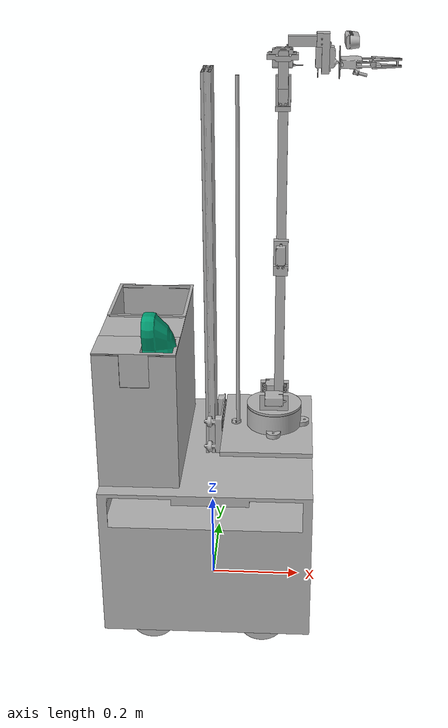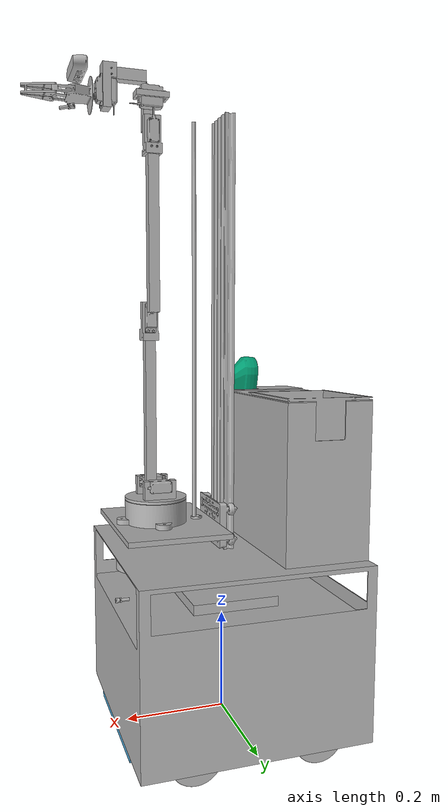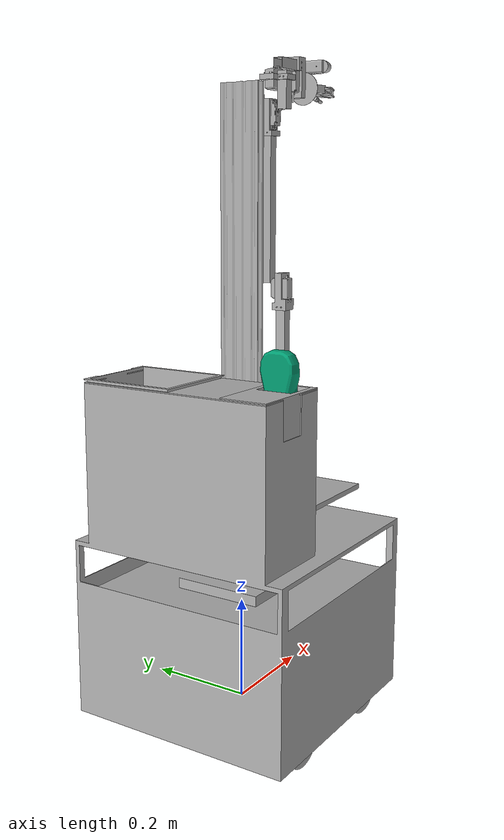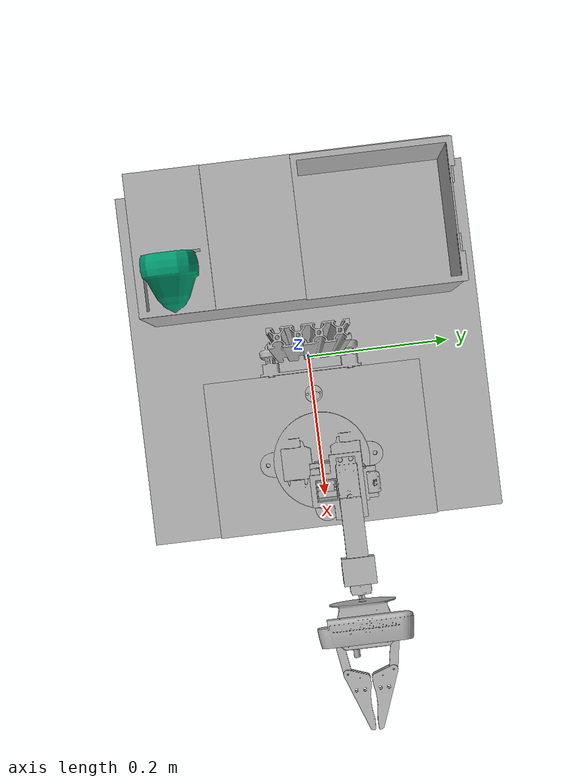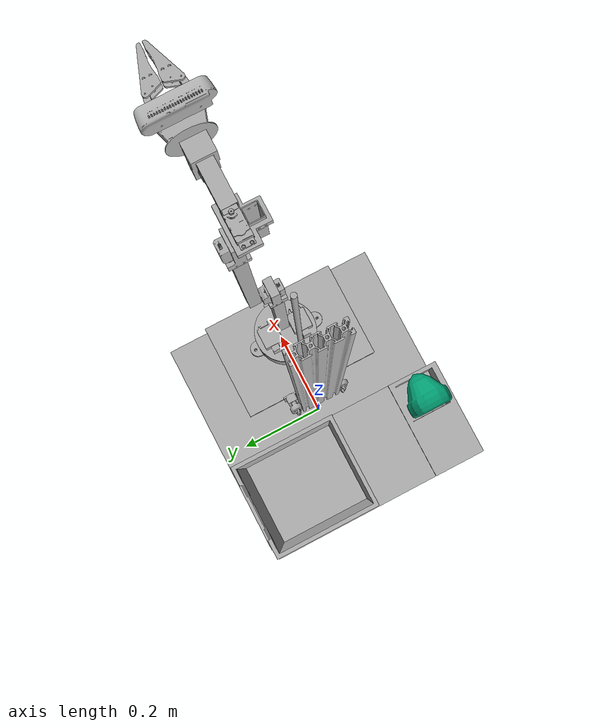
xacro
<?xml version="1.0" ?>
<robot name="apbot" xmlns:xacro="http://www.ros.org/wiki/xacro">

<xacro:include filename="$(find apbot_description)/urdf/materials.xacro" />
<xacro:include filename="$(find apbot_description)/urdf/apbot.trans" />
<xacro:include filename="$(find apbot_description)/urdf/apbot.gazebo" />

<!-- Arm -->
<xacro:include filename="$(find arm_description)/urdf/arm.xacro" />

<!-- Arm's joint to base -->
<joint name="apbot_joint" type="prismatic">
  <parent link="base_link" />
  <child link = "arm_base_link" />
  <origin xyz="0 -0.005 .69" rpy="0.0 0.0 0" />
  <axis xyz="0 0 1" />
  <limit effort="30" velocity="1.0" lower="0" upper=".7" />
</joint>

<!-- root link, on the ground just below the model origin -->
<link name="base_footprint">
  <visual>
    <origin xyz="0 0 0" rpy="0 0 0" />
    <geometry>
      <box size="0.001 0.001 0.001" />
    </geometry>
  </visual>
</link>

<!-- Joint for planar move -->
<joint name="base_link_joint" type="fixed">
  <origin xyz="0.0 0 0" rpy="0 0 ${pi/2}" />
  <parent link="base_footprint"/>
  <child link="base_link" />
</joint>

<link name="base_link">
  <inertial>
    <origin rpy="0 0 0" xyz="-1.184204407494283e-05 0.015197941868442526 0.1837926291684447"/>
    <mass value="1000"/>
    <inertia ixx=".366" ixy="-0.000165" ixz="7.3e-05" iyy=".4" iyz="-0.042" izz=".353"/>
  </inertial>
  <visual>
    <origin rpy="0 0 0" xyz="0 0 0"/>
    <geometry>
      <mesh filename="package://apbot_description/meshes/base_link.stl" scale="0.001 0.001 0.001"/>
    </geometry>
    <material name="silver"/>
  </visual>
  <collision>
    <origin rpy="0 0 0" xyz="0 0 0"/>
    <geometry>
      <mesh filename="package://apbot_description/meshes/base_link.stl" scale="0.001 0.001 0.001"/>
    </geometry>
  </collision>
</link>

<link name="lb_wheel_1">
  <inertial>
    <origin rpy="0 0 0" xyz="-0.024999999999999967 -1.3877787807814457e-17 3.469446951953614e-18"/>
    <mass value=".5"/>
    <inertia ixx="0.003843" ixy="0.0" ixz="0.0" iyy="0.002561" iyz="0.0" izz="0.002561"/>
  </inertial>
  <visual>
    <origin rpy="0 0 0" xyz="-0.211 -0.12 -0.02"/>
    <geometry>
      <mesh filename="package://apbot_description/meshes/lb_wheel_1.stl" scale="0.001 0.001 0.001"/>
    </geometry>
    <material name="silver"/>
  </visual>
  <collision>
    <origin rpy="0 ${pi/2} 0" xyz="-0.015 0 0"/>
    <geometry>
      <cylinder radius=".05" length=".035" />
    </geometry>
  </collision>
</link>

<link name="lf_wheel_1">
  <inertial>
    <origin rpy="0 0 0" xyz="-0.025000000000000022 1.3877787807814457e-17 3.469446951953614e-18"/>
    <mass value=".5"/>
    <inertia ixx="0.003843" ixy="0.0" ixz="-0.0" iyy="0.002561" iyz="0.0" izz="0.002561"/>
  </inertial>
  <visual>
    <origin rpy="0 0 0" xyz="-0.211 0.12 -0.02"/>
    <geometry>
      <mesh filename="package://apbot_description/meshes/lf_wheel_1.stl" scale="0.001 0.001 0.001"/>
    </geometry>
    <material name="silver"/>
  </visual>
  <collision>
    <origin rpy="0 ${pi/2} 0" xyz="-0.015 0 0"/>
    <geometry>
      <cylinder radius=".05" length=".035" />
    </geometry>
  </collision>
</link>

<link name="rf_wheel_1">
  <inertial>
    <origin rpy="0 0 0" xyz="0.025000000000000022 -2.7755575615628914e-17 3.469446951953614e-18"/>
    <mass value=".5"/>
    <inertia ixx="0.003843" ixy="0.0" ixz="0.0" iyy="0.002561" iyz="0.0" izz="0.002561"/>
  </inertial>
  <visual>
    <origin rpy="0 0 0" xyz="0.211 0.12 -0.02"/>
    <geometry>
      <mesh filename="package://apbot_description/meshes/rf_wheel_1.stl" scale="0.001 0.001 0.001"/>
    </geometry>
    <material name="silver"/>
  </visual>
  <collision>
    <origin rpy="0 ${pi/2} 0" xyz="0.015 0 0"/>
    <geometry>
      <cylinder radius=".05" length=".035" />
    </geometry>
  </collision>
</link>

<link name="rb_wheel_1">
  <inertial>
    <origin rpy="0 0 0" xyz="0.02500000000000005 2.7755575615628914e-17 3.469446951953614e-18"/>
    <mass value=".5"/>
    <inertia ixx="0.003843" ixy="0.0" ixz="-0.0" iyy="0.002561" iyz="-0.0" izz="0.002561"/>
  </inertial>
  <visual>
    <origin rpy="0 0 0" xyz="0.211 -0.12 -0.02"/>
    <geometry>
      <mesh filename="package://apbot_description/meshes/rb_wheel_1.stl" scale="0.001 0.001 0.001"/>
    </geometry>
    <material name="silver"/>
  </visual>
  <collision>
    <origin rpy="0 ${pi/2} 0" xyz="0.015 0 0"/>
    <geometry>
      <cylinder radius=".05" length=".035" />
    </geometry>
  </collision>
</link>

<link name="lidar_1">
  <inertial>
    <origin rpy="0 0 0" xyz="-7.237528875152536e-18 0.0 -0.010000000000000064"/>
    <mass value=".2"/>
    <inertia ixx="0.000812" ixy="-0.0" ixz="0.0" iyy="0.000812" iyz="0.0" izz="0.001541"/>
  </inertial>
  <visual>
    <origin rpy="0 0 0" xyz="-0.0 0.168 -0.3334"/>
    <geometry>
      <mesh filename="package://apbot_description/meshes/lidar_1.stl" scale="0.001 0.001 0.001"/>
    </geometry>
    <material name="silver"/>
  </visual>
</link>

<link name="nozzle_1">
  <inertial>
    <origin rpy="0 0 0" xyz="0.0009875805313844088 -0.0014508386042405563 -0.004646201103054193"/>
    <mass value="0.001831004123745"/>
    <inertia ixx="0.0" ixy="0.0" ixz="0.0" iyy="0.0" iyz="-0.0" izz="0.0"/>
  </inertial>
  <visual>
    <origin rpy="0 0 0" xyz="-0.001 0.21 -0.2554"/>
    <geometry>
      <mesh filename="package://apbot_description/meshes/nozzle_1.stl" scale="0.001 0.001 0.001"/>
    </geometry>
    <material name="silver"/>
  </visual>
</link>

<link name="arm_vslot_1">
  <inertial>
    <origin rpy="0 0 0" xyz="2.0911857770663358e-16 2.1929696272295866e-16 0.4158000000000001"/>
    <mass value=".8"/>
    <inertia ixx="0.209761" ixy="0.0" ixz="-0.0" iyy="0.211806" iyz="-0.0" izz="0.002345"/>
  </inertial>
  <visual>
    <origin rpy="0 0 0" xyz="-0.0 -0.0 -0.3454"/>
    <geometry>
      <mesh filename="package://apbot_description/meshes/arm_vslot_1.stl" scale="0.001 0.001 0.001"/>
    </geometry>
    <material name="silver"/>
  </visual>
  <collision>
    <origin rpy="0 0 0" xyz="-0.0 -0.0 0.42"/>
    <geometry>
      <box size=".09 .025 .83" />
    </geometry>
  </collision>
</link>

<link name="back_cover_1">
  <inertial>
    <origin rpy="0 0 0" xyz="-0.049670863056735536 0.0 0.2547007082541222"/>
    <mass value="11.658809779300011"/>
    <inertia ixx="0.026842" ixy="0.0" ixz="-0.000185" iyy="0.023759" iyz="-0.0" izz="0.030884"/>
  </inertial>
  <visual>
    <origin rpy="0 0 0" xyz="-0.0 -0.14 -0.3454"/>
    <geometry>
      <mesh filename="package://apbot_description/meshes/back_cover.stl" scale="0.001 0.001 0.001"/>
    </geometry>
    <material name="silver"/>
  </visual>
  <collision>
    <origin rpy="0 0 0" xyz="-0.0 -0.14 -0.3454"/>
    <geometry>
      <mesh filename="package://apbot_description/meshes/back_cover.stl" scale="0.001 0.001 0.001"/>
    </geometry>
  </collision>
</link>

<link name="trash_tray_1">
  <inertial>
    <origin rpy="0 0 ${3*pi/2}" xyz="-0.142 .103 .45"/>
    <mass value="0.01"/>
    <inertia ixx="0.209761" ixy="0.0" ixz="-0.0" iyy="0.211806" iyz="-0.0" izz="0.002345"/>
  </inertial>
  <visual>
    <origin rpy="0 0 ${3*pi/2}" xyz="-0.142 .103 .45"/>
    <geometry>
      <mesh filename="package://apbot_description/meshes/trash_tray.dae" scale="1 1 1"/>
    </geometry>
    <material name="silver"/>
  </visual>
  <collision>
    <origin rpy="0 0 ${3*pi/2}" xyz="-.142 .103 .45"/>
    <geometry>
      <mesh filename="package://apbot_description/meshes/trash_tray.dae" scale="1 1 1"/>
    </geometry>
  </collision>
</link>

<link name="sponge_tray_1">
  <inertial>
    <origin rpy="0 0 0" xyz="0 0 0"/>
    <mass value="0.01"/>
    <inertia ixx="0.209761" ixy="0.0" ixz="-0.0" iyy="0.211806" iyz="-0.0" izz="0.002345"/>
  </inertial>
  <visual>
    <origin rpy="0 0 0" xyz="0 0 0"/>
    <geometry>
      <mesh filename="package://apbot_description/meshes/sponge_tray.stl" scale=".001 .001 .001"/>
    </geometry>
    <material name="silver"/>
  </visual>
  <collision>
    <origin rpy="0 0 0" xyz="0 0 0"/>
    <geometry>
      <mesh filename="package://apbot_description/meshes/sponge_tray.stl" scale=".001 .001 .001"/>
    </geometry>
  </collision>
</link>

<link name="mop_tray">
  <inertial>
    <origin rpy="0 0 0" xyz="0 0 0"/>
    <mass value=".1"/>
    <inertia ixx="0.001" ixy="0.0" ixz="-0.0" iyy="0.001" iyz="-0.0" izz="01"/>
  </inertial>
  <visual>
    <origin rpy="0 0 0" xyz="0 0 0"/>
    <geometry>
      <box size=".27 .15 .01"/>
    </geometry>
  </visual>
</link>

<link name="sponge">
  <inertial>
    <origin rpy="${pi/2} 0 ${pi/2}" xyz="-.147 -.141 .7"/>
    <mass value=".001"/>
    <inertia ixx="0.001" ixy="0.0" ixz="-0.0" iyy="0.001" iyz="-0.0" izz="01"/>
  </inertial>
  <visual>
    <origin rpy="${pi/2} 0 ${pi/2}" xyz="-.147 -.141 .7"/>
    <geometry>
      <mesh filename="package://apbot_description/meshes/sponge/meshes/bin.dae" scale="1 1 1"/>
    </geometry>
  </visual>
  <collision>
    <origin rpy="${pi/2} 0 ${pi/2}" xyz="-.147 -.141 .7"/>
    <geometry>
      <mesh filename="package://apbot_description/meshes/sponge/meshes/bin.dae" scale="1 1 1"/>
    </geometry>
  </collision>
</link>

<joint name="lb_wheel_joint" type="fixed">
  <origin rpy="0 0 0" xyz="0.211 0.12 0.02"/>
  <parent link="base_link"/>
  <child link="lb_wheel_1"/>
</joint>

<joint name="lf_wheel_joint" type="fixed">
  <origin rpy="0 0 0" xyz="0.211 -0.12 0.02"/>
  <parent link="base_link"/>
  <child link="lf_wheel_1"/>
</joint>

<joint name="rf_wheel_joint" type="fixed">
  <origin rpy="0 0 0" xyz="-0.211 -0.12 0.02"/>
  <parent link="base_link"/>
  <child link="rf_wheel_1"/>
</joint>

<joint name="rb_wheel_joint" type="fixed">
  <origin rpy="0 0 0" xyz="-0.211 0.12 0.02"/>
  <parent link="base_link"/>
  <child link="rb_wheel_1"/>
</joint>

<joint name="lidar_joint" type="fixed">
  <origin rpy="0 0 0" xyz="0.0 -0.168 0.3334"/>
  <parent link="base_link"/>
  <child link="lidar_1"/>
</joint>

<joint name="nozzle_joint" type="fixed">
  <origin rpy="0 0 0" xyz="0.001 -0.21 0.2554"/>
  <parent link="base_link"/>
  <child link="nozzle_1"/>
</joint>

<joint name="arm_vslot_joint" type="fixed">
  <origin rpy="0 0 0" xyz="0.0 0.0 0.3454"/>
  <parent link="base_link"/>
  <child link="arm_vslot_1"/>
</joint>

<joint name="back_cover_joint" type="fixed">
  <origin rpy="0 0 0" xyz="0.0 0.14 0.3454"/>
  <parent link="base_link"/>
  <child link="back_cover_1"/>
</joint>

<joint name="trash_tray_joint" type="floating">
  <origin rpy="0 0 ${-pi/2}" xyz="0 0 0"/>
  <parent link="base_link"/>
  <child link="trash_tray_1"/>
</joint>

<joint name="sponge_tray_joint" type="fixed">
  <origin rpy="0 0 0" xyz="0.0 0.0 0"/>
  <parent link="base_link"/>
  <child link="sponge_tray_1"/>
</joint>

<joint name="sponge_joint" type="floating">
  <origin rpy="0 0 ${-pi/2}" xyz="-.005 -0.01 -.05"/>
  <parent link="sponge_tray_1"/>
  <child link="sponge"/>
</joint>

<joint name="mop_tray_joint" type="prismatic">
  <origin rpy="0 0 0" xyz="0 -0.15 -.005"/>
  <parent link="base_link"/>
  <child link="mop_tray"/>
  <axis xyz="0 0 1" />
  <limit effort="30" velocity=".5" lower="-.02" upper="0" />
</joint>

</robot>

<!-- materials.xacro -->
<robot name="apbot" xmlns:xacro="http://www.ros.org/wiki/xacro" >

<material name="silver">
  <color rgba="0.700 0.700 0.700 1.000"/>
</material>

</robot>

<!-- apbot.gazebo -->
<robot name="apbot" xmlns:xacro="http://www.ros.org/wiki/xacro" >

<xacro:property name="base_color" value="Gazebo/DarkGrey" />
<xacro:property name="wheel_color" value="Gazebo/Grey" />
<xacro:property name="lidar_color" value="Gazebo/Blue" />
<xacro:property name="nozzle_color" value="Gazebo/Red" />
<xacro:property name="arm_vslot_color" value="Gazebo/Yellow" />
<xacro:property name="back_cover_color" value="Gazebo/Red" />
<xacro:property name="trash_tray_color" value="Gazebo/Yellow" />
<xacro:property name="sponge_tray_color" value="Gazebo/Green" />

<!-- Plugins -->

<gazebo>
  <plugin filename="libgazebo_ros_control.so" name="control"/>
</gazebo>

<gazebo>
  <plugin name="object_controller" filename="libgazebo_ros_planar_move.so">
    <commandTopic>cmd_vel</commandTopic>
    <odometryTopic>odom</odometryTopic>
    <odometryFrame>odom</odometryFrame>
    <odometryRate>20.0</odometryRate>
    <robotBaseFrame>base_footprint</robotBaseFrame>
  </plugin>
</gazebo>

<gazebo reference="lidar_1">
    <sensor type="ray" name="front_lidar">
      <pose>0 0 0 0 0 0</pose>
      <visualize>False</visualize>
      <update_rate>10</update_rate>
      <ray>
        <scan>
          <horizontal>
            <samples>720</samples>
            <resolution>1</resolution>
            <min_angle>-3.14</min_angle>
            <max_angle>3.14</max_angle>
          </horizontal>
        </scan>
        <range>
          <min>0.1</min>
          <max>12.0</max>
          <resolution>0.05</resolution>
        </range>
        <noise>
          <type>gaussian</type>
          <mean>0.0</mean>
          <stddev>0.01</stddev>
        </noise>
      </ray>
      <plugin name="gazebo_ros_head_hokuyo_controller" filename="libgazebo_ros_laser.so">
        <topicName>scan</topicName>
        <frameName>lidar_1</frameName>
      </plugin>
    </sensor>
  </gazebo>

<gazebo reference="base_link">
  <material>${base_color}</material>
  <mu1>0.2</mu1>
  <mu2>0.2</mu2>
  <selfCollide>true</selfCollide>
  <gravity>true</gravity>
</gazebo>

<gazebo reference="lb_wheel_1">
  <material>${wheel_color}</material>
  <mu1>0.2</mu1>
  <mu2>0.2</mu2>
  <selfCollide>true</selfCollide>
</gazebo>

<gazebo reference="lf_wheel_1">
  <material>${wheel_color}</material>
  <mu1>0.2</mu1>
  <mu2>0.2</mu2>
  <selfCollide>true</selfCollide>
</gazebo>

<gazebo reference="rf_wheel_1">
  <material>${wheel_color}</material>
  <mu1>0.2</mu1>
  <mu2>0.2</mu2>
  <selfCollide>true</selfCollide>
</gazebo>

<gazebo reference="rb_wheel_1">
  <material>${wheel_color}</material>
  <mu1>0.2</mu1>
  <mu2>0.2</mu2>
  <selfCollide>true</selfCollide>
</gazebo>

<gazebo reference="lidar_1">
  <material>${lidar_color}</material>
  <mu1>0.2</mu1>
  <mu2>0.2</mu2>
  <selfCollide>true</selfCollide>
</gazebo>

<gazebo reference="nozzle_1">
  <material>${nozzle_color}</material>
  <mu1>0.2</mu1>
  <mu2>0.2</mu2>
  <selfCollide>false</selfCollide>
</gazebo>

<gazebo reference="arm_vslot_1">
  <material>${arm_vslot_color}</material>
  <mu1>0.2</mu1>
  <mu2>0.2</mu2>
  <selfCollide>true</selfCollide>
</gazebo>

<gazebo reference="back_cover_1">
  <material>${back_cover_color}</material>
  <mu1>1</mu1>
  <mu2>1</mu2>
  <kp>100000000</kp>
  <kd>.5</kd>
  <selfCollide>true</selfCollide>
</gazebo>

<gazebo reference="trash_tray_1">
  <material>${trash_tray_color}</material>
  <mu1>1</mu1>
  <mu2>1</mu2>
  <kp>.01</kp>
  <kd>1000000</kd>
  <selfCollide>true</selfCollide>
  <gravity>false</gravity>
</gazebo>

<gazebo reference="sponge_tray_1">
<material>${sponge_tray_color}</material>
  <mu1>0</mu1>
  <mu2>0</mu2>
  <selfCollide>true</selfCollide>
  <gravity>false</gravity>
</gazebo>

<gazebo reference="mop_tray">
  <mu1>0</mu1>
  <mu2>0</mu2>
  <selfCollide>false</selfCollide>
  <gravity>false</gravity>
</gazebo>

</robot>

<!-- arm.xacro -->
<robot name="arm" xmlns:xacro="http://www.ros.org/wiki/xacro">

<xacro:include filename="$(find arm_description)/urdf/arm.trans" />
<xacro:include filename="$(find arm_description)/urdf/arm.gazebo" />

<!-- Gripper -->
<xacro:include filename="$(find apbot_gripper_description)/urdf/apbot_gripper.xacro" />

<!-- Gripper Joint -->
<joint name="gripper_joint" type="continuous">
  <origin rpy="0 ${pi/2} ${pi}" xyz="0.005 -.06 -0.03519"/>
  <parent link="mg995_wrist3_1"/>
  <child link="gripper_base_link"/>
  <axis xyz="0.0 -1.0 -0.0"/>
</joint>

<link name="arm_base_link">
  <inertial>
    <origin rpy="0 0 0" xyz="-1.3531172383676431e-09 -0.12029385392971133 -0.2912711053363403"/>
    <mass value=".1"/>
    <inertia ixx="0.013698" ixy="0.0" ixz="0.0" iyy="0.027025" iyz="0.0" izz="0.040653"/>
  </inertial>
  <visual>
    <origin rpy="0 0 0" xyz="0 0 0"/>
    <geometry>
      <mesh filename="package://arm_description/meshes/base_link.stl" scale="0.001 0.001 0.001"/>
    </geometry>
    <material name="silver"/>
  </visual>
  <collision>
    <origin rpy="0 0 0" xyz="0 0 0"/>
    <geometry>
      <mesh filename="package://arm_description/meshes/base_link.stl" scale="0.001 0.001 0.001"/>
    </geometry>
  </collision>
</link>

<link name="arm_lead_screw_anti_backlash_nut__1">
  <inertial>
    <origin rpy="0 0 0" xyz="-6.782150594611905e-06 -6.21710010306753e-07 -0.006421039581144594"/>
    <mass value="0.020072194441107107"/>
    <inertia ixx="2e-06" ixy="-0.0" ixz="-0.0" iyy="2e-06" iyz="-0.0" izz="1e-06"/>
  </inertial>
  <visual>
    <origin rpy="0 0 0" xyz="-0.0 0.05 0.286271"/>
    <geometry>
      <mesh filename="package://arm_description/meshes/arm_lead_screw_anti_backlash_nut__1.stl" scale="0.001 0.001 0.001"/>
    </geometry>
    <material name="silver"/>
  </visual>
  <collision>
    <origin rpy="0 0 0" xyz="-0.0 0.05 0.286271"/>
    <geometry>
      <mesh filename="package://arm_description/meshes/arm_lead_screw_anti_backlash_nut__1.stl" scale="0.001 0.001 0.001"/>
    </geometry>
  </collision>
</link>

<link name="2040_gantry_kit_1">
  <inertial>
    <origin rpy="0 0 0" xyz="0.00012438923353576462 0.010685760504749345 -1.062516762351251e-07"/>
    <mass value="0.2"/>
    <inertia ixx="0.000563" ixy="3e-06" ixz="-0.0" iyy="0.002009" iyz="0.0" izz="0.001586"/>
  </inertial>
  <visual>
    <origin rpy="0 0 0" xyz="-0.0 0.0218 0.291271"/>
    <geometry>
      <mesh filename="package://arm_description/meshes/2040_gantry_kit_1.stl" scale="0.001 0.001 0.001"/>
    </geometry>
    <material name="silver"/>
  </visual>
  <collision>
    <origin rpy="0 0 0" xyz="-0.0 0.0218 0.291271"/>
    <geometry>
      <mesh filename="package://arm_description/meshes/2040_gantry_kit_1.stl" scale="0.001 0.001 0.001"/>
    </geometry>
  </collision>
</link>

<link name="arm_base_1">
  <inertial>
    <origin rpy="0 0 0" xyz="-0.00013281487490748525 0.06642988393150248 0.019947781840941536"/>
    <mass value=".1"/>
    <inertia ixx="0.002307" ixy="0.0" ixz="-1.5e-05" iyy="0.002613" iyz="-3.5e-05" izz="0.004389"/>
  </inertial>
  <visual>
    <origin rpy="0 0 0" xyz="-3e-06 0.2015 0.286271"/>
    <geometry>
      <mesh filename="package://arm_description/meshes/arm_base_1.stl" scale="0.001 0.001 0.001"/>
    </geometry>
    <material name="silver"/>
  </visual>
  <collision>
    <origin rpy="0 0 0" xyz="-3e-06 0.2015 0.286271"/>
    <geometry>
      <mesh filename="package://arm_description/meshes/arm_base_1.stl" scale="0.001 0.001 0.001"/>
    </geometry>
  </collision>
</link>

<link name="rki-1203_pan_1">
  <inertial>
    <origin rpy="0 0 0" xyz="0.02440063415076226 0.004999625942491953 -0.006344729085382028"/>
    <mass value="0.2"/>
    <inertia ixx="3.3e-05" ixy="-0.0" ixz="0.0" iyy="5.7e-05" iyz="0.0" izz="3.9e-05"/>
  </inertial>
  <visual>
    <origin rpy="0 0 0" xyz="0.0145 0.138666 0.258271"/>
    <geometry>
      <mesh filename="package://arm_description/meshes/rki-1203_pan_1.stl" scale="0.001 0.001 0.001"/>
    </geometry>
    <material name="silver"/>
  </visual>
  <collision>
    <origin rpy="0 0 0" xyz="0.0145 0.138666 0.258271"/>
    <geometry>
      <mesh filename="package://arm_description/meshes/rki-1203_pan_1.stl" scale="0.001 0.001 0.001"/>
    </geometry>
  </collision>
</link>

<link name="base_cover_1">
  <inertial>
    <origin rpy="0 0 0" xyz="-4.960693458989617e-07 -3.4454373704084773e-07 0.00888953386887012"/>
    <mass value="0.1"/>
    <inertia ixx="0.000609" ixy="-0.0" ixz="0.0" iyy="0.000795" iyz="0.0" izz="0.001255"/>
  </inertial>
  <visual>
    <origin rpy="0 0 0" xyz="0.0 0.133666 0.240271"/>
    <geometry>
      <mesh filename="package://arm_description/meshes/base_cover_1.stl" scale="0.001 0.001 0.001"/>
    </geometry>
    <material name="silver"/>
  </visual>
  <collision>
    <origin rpy="0 0 0" xyz="0.0 0.133666 0.240271"/>
    <geometry>
      <mesh filename="package://arm_description/meshes/base_cover_1.stl" scale="0.001 0.001 0.001"/>
    </geometry>
  </collision>
</link>

<link name="rki-1203_tilt1_1">
  <inertial>
    <origin rpy="0 0 0" xyz="0.00634412767969612 0.02440078545285365 -0.0050000758225687"/>
    <mass value="0.2"/>
    <inertia ixx="3.9e-05" ixy="-0.0" ixz="0.0" iyy="3.3e-05" iyz="0.0" izz="5.7e-05"/>
  </inertial>
  <visual>
    <origin rpy="0 0 0" xyz="-0.0243 0.158166 0.205771"/>
    <geometry>
      <mesh filename="package://arm_description/meshes/rki-1203_tilt1_1.stl" scale="0.001 0.001 0.001"/>
    </geometry>
    <material name="silver"/>
  </visual>
  <collision>
    <origin rpy="0 0 0" xyz="-0.0243 0.158166 0.205771"/>
    <geometry>
      <mesh filename="package://arm_description/meshes/rki-1203_tilt1_1.stl" scale="0.001 0.001 0.001"/>
    </geometry>
  </collision>
</link>

<link name="rki-1203_tilt2_1">
  <inertial>
    <origin rpy="0 0 0" xyz="-0.006345119818387965 0.02440078545285365 -0.0050001348501108045"/>
    <mass value="0.2"/>
    <inertia ixx="3.9e-05" ixy="0.0" ixz="0.0" iyy="3.3e-05" iyz="-0.0" izz="5.7e-05"/>
  </inertial>
  <visual>
    <origin rpy="0 0 0" xyz="0.0243 0.158166 0.205771"/>
    <geometry>
      <mesh filename="package://arm_description/meshes/rki-1203_tilt2_1.stl" scale="0.001 0.001 0.001"/>
    </geometry>
    <material name="silver"/>
  </visual>
  <collision>
    <origin rpy="0 0 0" xyz="0.0243 0.158166 0.205771"/>
    <geometry>
      <mesh filename="package://arm_description/meshes/rki-1203_tilt2_1.stl" scale="0.001 0.001 0.001"/>
    </geometry>
  </collision>
</link>

<link name="elbow_bracket_1">
  <inertial>
    <origin rpy="0 0 0" xyz="0.010807951266649986 -0.0050820886952618605 0.014317309296792341"/>
    <mass value="0.03"/>
    <inertia ixx="0.000113" ixy="-0.0" ixz="-5e-06" iyy="0.000103" iyz="0.0" izz="2.9e-05"/>
  </inertial>
  <visual>
    <origin rpy="0 0 0" xyz="0.0102 0.138586 -0.084979"/>
    <geometry>
      <mesh filename="package://arm_description/meshes/elbow_bracket_1.stl" scale="0.001 0.001 0.001"/>
    </geometry>
    <material name="silver"/>
  </visual>
  <collision>
    <origin rpy="0 0 0" xyz="0.0102 0.138586 -0.084979"/>
    <geometry>
      <mesh filename="package://arm_description/meshes/elbow_bracket_1.stl" scale="0.001 0.001 0.001"/>
    </geometry>
  </collision>
</link>

<link name="link1_1">
  <inertial>
    <origin rpy="0 0 0" xyz="-0.010000496069346132 -6.216426726990409e-07 0.14932850638558387"/>
    <mass value="0.05"/>
    <inertia ixx="0.001336" ixy="0.0" ixz="0.0" iyy="0.001336" iyz="0.0" izz="2.1e-05"/>
  </inertial>
  <visual>
    <origin rpy="0 0 0" xyz="-0.0101 0.143666 0.210771"/>
    <geometry>
      <mesh filename="package://arm_description/meshes/link1_1.stl" scale="0.001 0.001 0.001"/>
    </geometry>
    <material name="silver"/>
  </visual>
  <collision>
    <origin rpy="0 0 0" xyz="-0.0101 0.143666 0.210771"/>
    <geometry>
      <mesh filename="package://arm_description/meshes/link1_1.stl" scale="0.001 0.001 0.001"/>
    </geometry>
  </collision>
</link>

<link name="rki-1203_elbow_1">
  <inertial>
    <origin rpy="0 0 0" xyz="-0.006345119818387854 0.004999625718975498 -0.024401235332929885"/>
    <mass value="0.2"/>
    <inertia ixx="3.9e-05" ixy="0.0" ixz="-0.0" iyy="5.7e-05" iyz="0.0" izz="3.3e-05"/>
  </inertial>
  <visual>
    <origin rpy="0 0 0" xyz="-0.0098 0.148586 -0.133979"/>
    <geometry>
      <mesh filename="package://arm_description/meshes/rki-1203_elbow_1.stl" scale="0.001 0.001 0.001"/>
    </geometry>
    <material name="silver"/>
  </visual>
  <collision>
    <origin rpy="0 0 0" xyz="-0.0098 0.148586 -0.133979"/>
    <geometry>
      <mesh filename="package://arm_description/meshes/rki-1203_elbow_1.stl" scale="0.001 0.001 0.001"/>
    </geometry>
  </collision>
</link>

<link name="link2_1_1">
  <inertial>
    <origin rpy="0 0 0" xyz="0.009999503930653852 -1.041063643125728e-06 0.14944278575480607"/>
    <mass value="0.05"/>
    <inertia ixx="0.001339" ixy="-0.0" ixz="-0.0" iyy="0.001339" iyz="0.0" izz="2.2e-05"/>
  </inertial>
  <visual>
    <origin rpy="0 0 0" xyz="-0.024 0.143586 -0.119479"/>
    <geometry>
      <mesh filename="package://arm_description/meshes/link2_1_1.stl" scale="0.001 0.001 0.001"/>
    </geometry>
    <material name="silver"/>
  </visual>
  <collision>
    <origin rpy="0 0 0" xyz="-0.024 0.143586 -0.119479"/>
    <geometry>
      <mesh filename="package://arm_description/meshes/link2_1_1.stl" scale="0.001 0.001 0.001"/>
    </geometry>
  </collision>
</link>

<link name="wrist1_bracket_1">
  <inertial>
    <origin rpy="0 0 0" xyz="-0.010841434585935339 0.004782557786550623 0.019507293820203775"/>
    <mass value="0.03"/>
    <inertia ixx="9.6e-05" ixy="0.0" ixz="5e-06" iyy="8.6e-05" iyz="0.0" izz="2.6e-05"/>
  </inertial>
  <visual>
    <origin rpy="0 0 0" xyz="-0.0443 0.148326 -0.413353"/>
    <geometry>
      <mesh filename="package://arm_description/meshes/wrist1_bracket_1.stl" scale="0.001 0.001 0.001"/>
    </geometry>
    <material name="silver"/>
  </visual>
  <collision>
    <origin rpy="0 0 0" xyz="-0.0443 0.148326 -0.413353"/>
    <geometry>
      <mesh filename="package://arm_description/meshes/wrist1_bracket_1.stl" scale="0.001 0.001 0.001"/>
    </geometry>
  </collision>
</link>

<link name="mg995_wrist1_1">
  <inertial>
    <origin rpy="0 0 0" xyz="0.005431922125121898 0.004999655239392886 -0.022135540653728025"/>
    <mass value="0.055"/>
    <inertia ixx="2.4e-05" ixy="0.0" ixz="0.0" iyy="4.3e-05" iyz="0.0" izz="2.7e-05"/>
  </inertial>
  <visual>
    <origin rpy="0 0 0" xyz="-0.0243 0.148326 -0.463132"/>
    <geometry>
      <mesh filename="package://arm_description/meshes/mg995_wrist1_1.stl" scale="0.001 0.001 0.001"/>
    </geometry>
    <material name="silver"/>
  </visual>
  <collision>
    <origin rpy="0 0 0" xyz="-0.0243 0.148326 -0.463132"/>
    <geometry>
      <mesh filename="package://arm_description/meshes/mg995_wrist1_1.stl" scale="0.001 0.001 0.001"/>
    </geometry>
  </collision>
</link>

<link name="link3_1_1">
  <inertial>
    <origin rpy="0 0 0" xyz="-0.009987138265263738 -3.447672533574142e-07 0.034876616390597026"/>
    <mass value="0.02"/>
    <inertia ixx="1.9e-05" ixy="0.0" ixz="-0.0" iyy="1.9e-05" iyz="0.0" izz="5e-06"/>
  </inertial>
  <visual>
    <origin rpy="0 0 0" xyz="-0.0099 0.143326 -0.450743"/>
    <geometry>
      <mesh filename="package://arm_description/meshes/link3_1_1.stl" scale="0.001 0.001 0.001"/>
    </geometry>
    <material name="silver"/>
  </visual>
  <collision>
    <origin rpy="0 0 0" xyz="-0.0099 0.143326 -0.450743"/>
    <geometry>
      <mesh filename="package://arm_description/meshes/link3_1_1.stl" scale="0.001 0.001 0.001"/>
    </geometry>
  </collision>
</link>

<link name="wrist2_bracket_1">
  <inertial>
    <origin rpy="0 0 0" xyz="0.012772135083094186 -0.00864583177690087 -4.918118449159792e-07"/>
    <mass value="0.03"/>
    <inertia ixx="3.6e-05" ixy="-1e-06" ixz="-0.0" iyy="2.4e-05" iyz="-0.0" izz="5.9e-05"/>
  </inertial>
  <visual>
    <origin rpy="0 0 0" xyz="-0.0014 0.133026 -0.508743"/>
    <geometry>
      <mesh filename="package://arm_description/meshes/wrist2_bracket_1.stl" scale="0.001 0.001 0.001"/>
    </geometry>
    <material name="silver"/>
  </visual>
  <collision>
    <origin rpy="0 0 0" xyz="-0.0014 0.133026 -0.508743"/>
    <geometry>
      <mesh filename="package://arm_description/meshes/wrist2_bracket_1.stl" scale="0.001 0.001 0.001"/>
    </geometry>
  </collision>
</link>

<link name="mg995_wrist2_1_1">
  <inertial>
    <origin rpy="0 0 0" xyz="-0.00500049605288928 0.02433534122864142 -0.005432910507889521"/>
    <mass value="0.055"/>
    <inertia ixx="4.3e-05" ixy="-0.0" ixz="0.0" iyy="2.7e-05" iyz="0.0" izz="2.4e-05"/>
  </inertial>
  <visual>
    <origin rpy="0 0 0" xyz="-0.0251 0.166335 -0.513743"/>
    <geometry>
      <mesh filename="package://arm_description/meshes/mg995_wrist2_1_1.stl" scale="0.001 0.001 0.001"/>
    </geometry>
    <material name="silver"/>
  </visual>
  <collision>
    <origin rpy="0 0 0" xyz="-0.0251 0.166335 -0.513743"/>
    <geometry>
      <mesh filename="package://arm_description/meshes/mg995_wrist2_1_1.stl" scale="0.001 0.001 0.001"/>
    </geometry>
  </collision>
</link>

<link name="link4_1_1">
  <inertial>
    <origin rpy="0 0 0" xyz="-4.96069346857253e-07 -0.034784265560588695 0.009997661408342462"/>
    <mass value="0.03"/>
    <inertia ixx="1.9e-05" ixy="-0.0" ixz="-0.0" iyy="5e-06" iyz="-0.0" izz="1.9e-05"/>
  </inertial>
  <visual>
    <origin rpy="0 0 0" xyz="-0.0201 0.151746 -0.528143"/>
    <geometry>
      <mesh filename="package://arm_description/meshes/link4_1_1.stl" scale="0.001 0.001 0.001"/>
    </geometry>
    <material name="silver"/>
  </visual>
  <collision>
    <origin rpy="0 0 0" xyz="-0.0201 0.151746 -0.528143"/>
    <geometry>
      <mesh filename="package://arm_description/meshes/link4_1_1.stl" scale="0.001 0.001 0.001"/>
    </geometry>
  </collision>
</link>

<link name="wrist3_bracket_1">
  <inertial>
    <origin rpy="0 0 0" xyz="-0.010300496069344356 -0.006742537219063038 -0.011496720767835367"/>
    <mass value="0.03"/>
    <inertia ixx="0.000129" ixy="-0.0" ixz="0.0" iyy="0.000143" iyz="-7e-06" izz="2.8e-05"/>
  </inertial>
  <visual>
    <origin rpy="0 0 0" xyz="-0.0304 0.216312 -0.533396"/>
    <geometry>
      <mesh filename="package://arm_description/meshes/wrist3_bracket_1.stl" scale="0.001 0.001 0.001"/>
    </geometry>
    <material name="silver"/>
  </visual>
  <collision>
    <origin rpy="0 0 0" xyz="-0.0304 0.216312 -0.533396"/>
    <geometry>
      <mesh filename="package://arm_description/meshes/wrist3_bracket_1.stl" scale="0.001 0.001 0.001"/>
    </geometry>
  </collision>
</link>

<link name="mg995_wrist3_1">
  <inertial>
    <origin rpy="0 0 0" xyz="0.0049995039471053045 0.005432711518115335 -0.025443533764259674"/>
    <mass value="0.055"/>
    <inertia ixx="4.3e-05" ixy="-0.0" ixz="-0.0" iyy="2.4e-05" iyz="-0.0" izz="2.7e-05"/>
  </inertial>
  <visual>
    <origin rpy="0 0 0" xyz="-0.0151 0.232046 -0.532939"/>
    <geometry>
      <mesh filename="package://arm_description/meshes/mg995_wrist3_1.stl" scale="0.001 0.001 0.001"/>
    </geometry>
    <material name="silver"/>
  </visual>
  <collision>
    <origin rpy="0 0 0" xyz="-0.0151 0.232046 -0.532939"/>
    <geometry>
      <mesh filename="package://arm_description/meshes/mg995_wrist3_1.stl" scale="0.001 0.001 0.001"/>
    </geometry>
  </collision>
</link>

<link name="d435_1">
  <inertial>
    <origin rpy="0 0 0" xyz="0.0011639548429780606 -0.0020978679018932578 0.01243721951034027"/>
    <mass value="0.15"/>
    <inertia ixx="3.2e-05" ixy="-2e-06" ixz="-0.0" iyy="0.000214" iyz="0.0" izz="0.000216"/>
  </inertial>
  <visual>
    <origin rpy="0 0 0" xyz="-0.0201 0.186746 -0.588143"/>
    <geometry>
      <mesh filename="package://arm_description/meshes/d435_1.stl" scale="0.001 0.001 0.001"/>
    </geometry>
    <material name="silver"/>
  </visual>
  <collision>
    <origin rpy="0 0 0" xyz="-0.0201 0.186746 -0.588143"/>
    <geometry>
      <mesh filename="package://arm_description/meshes/d435_1.stl" scale="0.001 0.001 0.001"/>
    </geometry>
  </collision>
</link>

<link name="nozzle_gripper">
  <inertial>
    <origin rpy="0 0 0" xyz="0.0009875805313844088 -0.0014508386042405563 -0.004646201103054193"/>
    <mass value="0.001831004123745"/>
    <inertia ixx="0.0" ixy="0.0" ixz="0.0" iyy="0.0" iyz="-0.0" izz="0.0"/>
  </inertial>
  <visual>
    <origin rpy="0 0 0" xyz="-0.001 0.21 -0.2554"/>
    <geometry>
      <mesh filename="package://apbot_description/meshes/nozzle_1.stl" scale="0.001 0.001 0.001"/>
    </geometry>
    <material name="silver"/>
  </visual>
  <collision>
    <origin rpy="0 0 0" xyz="-0.001 0.21 -0.2554"/>
    <geometry>
      <mesh filename="package://apbot_description/meshes/nozzle_1.stl" scale="0.001 0.001 0.001"/>
    </geometry>
  </collision>
</link>

<joint name="nozzle_gripper_joint" type="fixed">
  <origin rpy="3.14 0 2.9" xyz="0.02 -0.002 0.006"/>
  <parent link="gripper_base_link"/>
  <child link="nozzle_gripper"/>
</joint>

<joint name="arm_nut_joint" type="fixed">
  <origin rpy="0 0 0" xyz="0.0 -0.05 -0.286271"/>
  <parent link="arm_base_link"/>
  <child link="arm_lead_screw_anti_backlash_nut__1"/>
</joint>

<joint name="arm_gantry_joint" type="fixed">
  <origin rpy="0 0 0" xyz="0.0 -0.0218 -0.291271"/>
  <parent link="arm_base_link"/>
  <child link="2040_gantry_kit_1"/>
</joint>

<joint name="arm_base_joint" type="fixed">
  <origin rpy="0 0 0" xyz="3e-06 -0.2015 -0.286271"/>
  <parent link="arm_base_link"/>
  <child link="arm_base_1"/>
</joint>

<joint name="servo_pan_joint" type="fixed">
  <origin rpy="0 0 0" xyz="-0.014503 0.062834 0.028"/>
  <parent link="arm_base_1"/>
  <child link="rki-1203_pan_1"/>
</joint>

<joint name="shoulder_pan_joint" type="continuous">
  <origin rpy="0 0 0" xyz="0.0145 0.005 0.018"/>
  <parent link="rki-1203_pan_1"/>
  <child link="base_cover_1"/>
  <axis xyz="-0.0 -0.0 -1.0"/>
</joint>

<joint name="servo_tilt_1_joint" type="fixed">
  <origin rpy="0 0 0" xyz="0.0243 -0.0245 0.0345"/>
  <parent link="base_cover_1"/>
  <child link="rki-1203_tilt1_1"/>
</joint>

<joint name="servo_tilt_2_joint" type="fixed">
  <origin rpy="0 0 0" xyz="-0.0243 -0.0245 0.0345"/>
  <parent link="base_cover_1"/>
  <child link="rki-1203_tilt2_1"/>
</joint>

<joint name="elbow_bracket" type="fixed">
  <origin rpy="0 0 0" xyz="-0.0203 0.00508 0.29575"/>
  <parent link="link1_1"/>
  <child link="elbow_bracket_1"/>
</joint>

<joint name="shoulder_tilt_joint" type="continuous">
  <origin rpy="0 0 0" xyz="-0.0142 0.0145 -0.005"/>
  <parent link="rki-1203_tilt1_1"/>
  <child link="link1_1"/>
  <axis xyz="1.0 0.0 -0.0"/>
</joint>

<joint name="servo_elbow_joint" type="fixed">
  <origin rpy="0 0 0" xyz="0.02 -0.01 0.049"/>
  <parent link="elbow_bracket_1"/>
  <child link="rki-1203_elbow_1"/>
</joint>

<joint name="elbow_joint" type="continuous">
  <origin rpy="0 0 0" xyz="0.0142 0.005 -0.0145"/>
  <parent link="rki-1203_elbow_1"/>
  <child link="link2_1_1"/>
  <axis xyz="-1.0 -0.0 -0.0"/>
</joint>

<joint name="wrist1_bracket" type="fixed">
  <origin rpy="0 0 0" xyz="0.0203 -0.00474 0.293874"/>
  <parent link="link2_1_1"/>
  <child link="wrist1_bracket_1"/>
</joint>

<joint name="servo_wrist1" type="fixed">
  <origin rpy="0 0 0" xyz="-0.02 0.0 0.049779"/>
  <parent link="wrist1_bracket_1"/>
  <child link="mg995_wrist1_1"/>
</joint>

<joint name="wrist1_joint" type="continuous">
  <origin rpy="0 0 0" xyz="-0.0144 0.005 -0.012389"/>
  <parent link="mg995_wrist1_1"/>
  <child link="link3_1_1"/>
  <axis xyz="-1.0 -0.0 -0.0"/>
</joint>

<joint name="wrist2_bracket" type="fixed">
  <origin rpy="0 0 0" xyz="-0.0085 0.0103 0.058"/>
  <parent link="link3_1_1"/>
  <child link="wrist2_bracket_1"/>
</joint>

<joint name="servo_wrist2" type="fixed">
  <origin rpy="0 0 0" xyz="0.0237 -0.033309 0.005"/>
  <parent link="wrist2_bracket_1"/>
  <child link="mg995_wrist2_1_1"/>
</joint>

<joint name="wrist2_joint" type="continuous">
  <origin rpy="0 0 0" xyz="-0.005 0.014589 0.0144"/>
  <parent link="mg995_wrist2_1_1"/>
  <child link="link4_1_1"/>
  <axis xyz="-0.0 -0.0 1.0"/>
</joint>

<joint name="wrist3_bracket" type="fixed">
  <origin rpy="0 0 0" xyz="0.0103 -0.064566 0.005253"/>
  <parent link="link4_1_1"/>
  <child link="wrist3_bracket_1"/>
</joint>

<joint name="servo_wrist3" type="fixed">
  <origin rpy="0 0 0" xyz="-0.0153 -0.015734 -0.000457"/>
  <parent link="wrist3_bracket_1"/>
  <child link="mg995_wrist3_1"/>
</joint>

<joint name="d435" type="fixed">
  <origin rpy="${pi} ${pi/2} 0" xyz="-0.03 -0.02 0"/>
  <parent link="gripper_base_link"/>
  <child link="d435_1"/>
</joint>

<!-- Camera joint and tf fix -->

<joint name="camera_rgb_joint" type="fixed">
  <origin xyz="0 0 0" rpy="0 0 ${-pi/2}"/>
  <parent link="d435_1"/>
  <child link="camera_rgb_frame"/>
</joint>

<link name="camera_rgb_frame">
</link>

<joint name="camera_depth_joint" type="fixed">
  <origin xyz="0 0 0" rpy="${-pi/2} 0 ${-pi/2}"/>
  <parent link="camera_rgb_frame"/>
  <child link="camera_depth_frame"/>
</joint>

<link name="camera_depth_frame">
</link>

</robot>

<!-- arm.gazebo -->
<robot name="arm" xmlns:xacro="http://www.ros.org/wiki/xacro" >

<xacro:property name="arm_base_link_color" value="Gazebo/Red" />
<xacro:property name="arm_nut_color" value="Gazebo/Yellow" />
<xacro:property name="arm_gantry_color" value="Gazebo/Grey" />
<xacro:property name="arm_base_color" value="Gazebo/Black" />
<xacro:property name="arm_rki_color" value="Gazebo/Blue" />
<xacro:property name="arm_mg995_color" value="Gazebo/Red" />
<xacro:property name="arm_bracket_color" value="Gazebo/Silver" />
<xacro:property name="arm_link_color" value="Gazebo/Black" />
<xacro:property name="arm_gripper_color" value="Gazebo/Grey" />
<xacro:property name="arm_d435_color" value="Gazebo/White" />

<!-- Plugins -->

<!-- intel realsense1 -->
<gazebo reference="camera_rgb_frame">
  <sensor type="depth" name="intelrealsenseD435i">
    <always_on>1</always_on>
    <visualize>1</visualize>
    <camera>
      <horizontal_fov>1.047</horizontal_fov>
      <image>
        <width>640</width>
        <height>480</height>
        <format>R8G8B8</format>
      </image>
      <depth_camera>

      </depth_camera>
      <clip>
        <near>0.1</near>
        <far>100</far>
      </clip>
    </camera>
    <plugin name="intelrealsense" filename="libgazebo_ros_openni_kinect.so">
      <alwaysOn>true</alwaysOn>
      <updateRate>10.0</updateRate>
      <cameraName>camera</cameraName>
      <frameName>camera_depth_frame</frameName>
      <imageTopicName>/camera/color/image_raw</imageTopicName>
      <depthImageTopicName>/camera/depth/image_rect_raw</depthImageTopicName>
      <pointCloudTopicName>depth/points</pointCloudTopicName>
      <cameraInfoTopicName>/camera/color/camera_info</cameraInfoTopicName>
      <depthImageCameraInfoTopicName>/camera/depth/camera_info</depthImageCameraInfoTopicName>
      <pointCloudCutoff>0.2</pointCloudCutoff>
      <pointCloudCutoffMax>10.0</pointCloudCutoffMax>
      <hackBaseline>0.07</hackBaseline>
      <distortionK1>0.0</distortionK1>
      <distortionK2>0.0</distortionK2>
      <distortionK3>0.0</distortionK3>
      <distortionT1>0.0</distortionT1>
      <distortionT2>0.0</distortionT2>
      <CxPrime>0.0</CxPrime>
      <Cx>0.0</Cx>
      <Cy>0.0</Cy>
      <focalLength>0.0</focalLength>
    </plugin>
  </sensor>
</gazebo>

<gazebo reference="arm_base_link">
  <material>${arm_base_link_color}</material>
  <mu1>0.2</mu1>
  <mu2>0.2</mu2>
  <selfCollide>true</selfCollide>
  <gravity>true</gravity>
</gazebo>

<gazebo reference="arm_lead_screw_anti_backlash_nut__1">
  <material>${arm_nut_color}</material>
  <mu1>0.2</mu1>
  <mu2>0.2</mu2>
  <selfCollide>true</selfCollide>
</gazebo>

<gazebo reference="2040_gantry_kit_1">
  <material>${arm_gantry_color}</material>
  <mu1>0.2</mu1>
  <mu2>0.2</mu2>
  <selfCollide>true</selfCollide>
</gazebo>

<gazebo reference="arm_base_1">
  <material>${arm_base_color}</material>
  <mu1>0.2</mu1>
  <mu2>0.2</mu2>
  <selfCollide>true</selfCollide>
</gazebo>

<gazebo reference="rki-1203_pan_1">
  <material>${arm_rki_color}</material>
  <mu1>0.2</mu1>
  <mu2>0.2</mu2>
  <selfCollide>true</selfCollide>
</gazebo>

<gazebo reference="base_cover_1">
  <material>${arm_base_color}</material>
  <mu1>0.2</mu1>
  <mu2>0.2</mu2>
  <selfCollide>true</selfCollide>
</gazebo>

<gazebo reference="rki-1203_tilt1_1">
  <material>${arm_rki_color}</material>
  <mu1>0.2</mu1>
  <mu2>0.2</mu2>
  <selfCollide>true</selfCollide>
</gazebo>

<gazebo reference="rki-1203_tilt2_1">
  <material>${arm_rki_color}</material>
  <mu1>0.2</mu1>
  <mu2>0.2</mu2>
  <selfCollide>true</selfCollide>
</gazebo>

<gazebo reference="elbow_bracket_1">
  <material>${arm_bracket_color}</material>
  <mu1>0.2</mu1>
  <mu2>0.2</mu2>
  <selfCollide>true</selfCollide>
</gazebo>

<gazebo reference="link1_1">
  <material>${arm_link_color}</material>
  <mu1>0.2</mu1>
  <mu2>0.2</mu2>
  <selfCollide>true</selfCollide>
</gazebo>

<gazebo reference="rki-1203_elbow_1">
  <material>${arm_rki_color}</material>
  <mu1>0.2</mu1>
  <mu2>0.2</mu2>
  <selfCollide>true</selfCollide>
</gazebo>

<gazebo reference="link2_1_1">
  <material>${arm_link_color}</material>
  <mu1>0.2</mu1>
  <mu2>0.2</mu2>
  <selfCollide>true</selfCollide>
</gazebo>

<gazebo reference="wrist1_bracket_1">
  <material>${arm_bracket_color}</material>
  <mu1>0.2</mu1>
  <mu2>0.2</mu2>
  <selfCollide>true</selfCollide>
</gazebo>

<gazebo reference="mg995_wrist1_1">
  <material>${arm_mg995_color}</material>
  <mu1>0.2</mu1>
  <mu2>0.2</mu2>
  <selfCollide>true</selfCollide>
</gazebo>

<gazebo reference="link3_1_1">
  <material>${arm_link_color}</material>
  <mu1>0.2</mu1>
  <mu2>0.2</mu2>
  <selfCollide>true</selfCollide>
</gazebo>

<gazebo reference="wrist2_bracket_1">
  <material>${arm_bracket_color}</material>
  <mu1>0.2</mu1>
  <mu2>0.2</mu2>
  <selfCollide>true</selfCollide>
</gazebo>

<gazebo reference="mg995_wrist2_1_1">
  <material>${arm_mg995_color}</material>
  <mu1>0.2</mu1>
  <mu2>0.2</mu2>
  <selfCollide>true</selfCollide>
</gazebo>

<gazebo reference="link4_1_1">
  <material>${arm_link_color}</material>
  <mu1>0.2</mu1>
  <mu2>0.2</mu2>
  <selfCollide>true</selfCollide>
</gazebo>

<gazebo reference="wrist3_bracket_1">
  <material>${arm_bracket_color}</material>
  <mu1>0.2</mu1>
  <mu2>0.2</mu2>
  <selfCollide>true</selfCollide>
</gazebo>

<gazebo reference="mg995_wrist3_1">
  <material>${arm_mg995_color}</material>
  <mu1>0.2</mu1>
  <mu2>0.2</mu2>
  <selfCollide>true</selfCollide>
</gazebo>

<gazebo reference="gripper_1_1">
  <material>${arm_gripper_color}</material>
  <mu1>0.2</mu1>
  <mu2>0.2</mu2>
  <selfCollide>true</selfCollide>
</gazebo>

<gazebo reference="d435_1">
  <material>${arm_d435_color}</material>
  <mu1>0.2</mu1>
  <mu2>0.2</mu2>
  <selfCollide>true</selfCollide>
</gazebo>

</robot>

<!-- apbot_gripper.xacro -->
<robot name="apbot_gripper" xmlns:xacro="http://www.ros.org/wiki/xacro">

<xacro:include filename="$(find apbot_gripper_description)/urdf/apbot_gripper.trans" />
<xacro:include filename="$(find apbot_gripper_description)/urdf/apbot_gripper.gazebo" />
<link name="gripper_base_link">
  <inertial>
    <origin rpy="0 0 0" xyz="9.160319814008974e-17 -0.02423998231836639 0.005932572791127643"/>
    <mass value="0.1285784757973692"/>
    <inertia ixx="5.8e-05" ixy="0.0" ixz="-0.0" iyy="4.4e-05" iyz="0.0" izz="3.6e-05"/>
  </inertial>
  <visual>
    <origin rpy="0 0 0" xyz="0 0 -0.006"/>
    <geometry>
      <mesh filename="package://apbot_gripper_description/meshes/base_link.stl" scale="0.001 0.001 0.001"/>
    </geometry>
    <material name="silver"/>
  </visual>
  <collision>
    <origin rpy="0 0 0" xyz="0 0 -0.006"/>
    <geometry>
      <mesh filename="package://apbot_gripper_description/meshes/base_link.stl" scale="0.001 0.001 0.001"/>
    </geometry>
  </collision>
</link>

<link name="finger_left_1">
  <inertial>
    <origin rpy="0 0 0" xyz="-0.0048999999999999695 0.020258383272484165 -0.011397319304167926"/>
    <mass value="0.0394974646315258"/>
    <inertia ixx="1.1e-05" ixy="-0.0" ixz="0.0" iyy="3e-06" iyz="2e-06" izz="1.1e-05"/>
  </inertial>
  <visual>
    <origin rpy="0 0 0" xyz="-0.0049 -0.025497 -0.027454"/>
    <geometry>
      <mesh filename="package://apbot_gripper_description/meshes/finger_left_1.stl" scale="0.001 0.001 0.001"/>
    </geometry>
    <material name="silver"/>
  </visual>
  <collision>
    <origin rpy="0 0 0" xyz="-0.0049 -0.025497 -0.027454"/>
    <geometry>
      <mesh filename="package://apbot_gripper_description/meshes/finger_left_1.stl" scale="0.001 0.001 0.001"/>
    </geometry>
  </collision>
</link>

<link name="finger_right_1">
  <inertial>
    <origin rpy="0 0 0" xyz="0.004899999999999931 -0.005069171500498647 0.03909754484365974"/>
    <mass value="0.039497464631525814"/>
    <inertia ixx="1.1e-05" ixy="-0.0" ixz="-0.0" iyy="3e-06" iyz="-2e-06" izz="1.1e-05"/>
  </inertial>
  <visual>
    <origin rpy="0 0 0" xyz="0.0049 -0.025031 0.015024"/>
    <geometry>
      <mesh filename="package://apbot_gripper_description/meshes/finger_right_1.stl" scale="0.001 0.001 0.001"/>
    </geometry>
    <material name="silver"/>
  </visual>
  <collision>
    <origin rpy="0 0 0" xyz="0.0049 -0.025031 0.015024"/>
    <geometry>
      <mesh filename="package://apbot_gripper_description/meshes/finger_right_1.stl" scale="0.001 0.001 0.001"/>
    </geometry>
  </collision>
</link>

<link name="big_link_1">
  <inertial>
    <origin rpy="0 0 0" xyz="-0.004900000000000005 0.009770588926960123 -0.0020821150166260016"/>
    <mass value="0.019757748002224147"/>
    <inertia ixx="5e-06" ixy="-0.0" ixz="-0.0" iyy="0.0" iyz="0.0" izz="5e-06"/>
  </inertial>
  <visual>
    <origin rpy="0 0 0" xyz="-0.0049 0.006625 -0.032906"/>
    <geometry>
      <mesh filename="package://apbot_gripper_description/meshes/big_link_1.stl" scale="0.001 0.001 0.001"/>
    </geometry>
    <material name="silver"/>
  </visual>
  <collision>
    <origin rpy="0 0 0" xyz="-0.0049 0.006625 -0.032906"/>
    <geometry>
      <mesh filename="package://apbot_gripper_description/meshes/big_link_1.stl" scale="0.001 0.001 0.001"/>
    </geometry>
  </collision>
</link>

<link name="big_link_2">
  <inertial>
    <origin rpy="0 0 0" xyz="-0.004900000000000005 0.009770588926960123 -0.0020821150166260016"/>
    <mass value="0.019757748002224147"/>
    <inertia ixx="5e-06" ixy="-0.0" ixz="-0.0" iyy="0.0" iyz="-0.0" izz="5e-06"/>
  </inertial>
  <visual>
    <origin rpy="0 0 0" xyz="-0.0049 0.0064 0.02"/>
    <geometry>
      <mesh filename="package://apbot_gripper_description/meshes/big_link_2.stl" scale="0.001 0.001 0.001"/>
    </geometry>
    <material name="silver"/>
  </visual>
  <collision>
    <origin rpy="0 0 0" xyz="-0.0049 0.0064 0.02"/>
    <geometry>
      <mesh filename="package://apbot_gripper_description/meshes/big_link_2.stl" scale="0.001 0.001 0.001"/>
    </geometry>
  </collision>
</link>

<joint name="finger_joint_left" type="continuous">
  <origin rpy="0 0 0" xyz="0.0 0.032122 -0.005452"/>
  <parent link="big_link_1"/>
  <child link="finger_left_1"/>
  <axis xyz="-1.0 0.0 -0.0"/>
  <limit lower="0.0" upper="2" velocity="2.0" effort="1000"/>
  <minDepth>0.001</minDepth>
  <mimic joint="knuckle_joint_left" multiplier="1" offset="0"/>
</joint>

<joint name="finger_joint_right" type="continuous">
  <origin rpy="0 0 0" xyz="-0.0098 0.0317 0.004976"/>
  <parent link="big_link_2"/>
  <child link="finger_right_1"/>
  <axis xyz="-1.0 0.0 -0.0"/>
  <limit lower="-2" upper="0" velocity="2.0" effort="1000"/>
  <minDepth>0.001</minDepth>
  <mimic joint="knuckle_joint_left" multiplier="-1" offset="0"/>
</joint>

<joint name="knuckle_joint_left" type="continuous">
  <origin rpy=".01 0 0" xyz="0.0049 -0.0064 0.026906"/>
  <parent link="gripper_base_link"/>
  <child link="big_link_1"/>
  <axis xyz="1.0 -0.0 0.0"/>
  <limit lower="0.0" upper="2" velocity="2.0" effort="1000"/>
  <minDepth>0.001</minDepth>
</joint>

<joint name="knuckle_joint_right" type="continuous">
  <origin rpy="-.01 0 0" xyz="0.0049 -0.0064 -0.026"/>
  <parent link="gripper_base_link"/>
  <child link="big_link_2"/>
  <axis xyz="1.0 -0.0 0.0"/>
  <limit lower="-2" upper="0" velocity="2.0" effort="1000"/>
  <minDepth>0.001</minDepth>
  <mimic joint="knuckle_joint_left" multiplier="-1" offset="0"/>
</joint>

</robot>

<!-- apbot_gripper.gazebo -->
<robot name="apbot_gripper" xmlns:xacro="http://www.ros.org/wiki/xacro" >

<xacro:property name="gripper_base_color" value="Gazebo/Red" />
<xacro:property name="finger_color" value="Gazebo/Yellow" />

<gazebo reference="gripper_base_link">
  <implicitSpringDamper>1</implicitSpringDamper>
  <material>${finger_color}</material>
  <mu1>100000</mu1>
  <mu2>100000</mu2>
  <kp>100000000.0</kp>
  <kd>1.0</kd>
</gazebo>

<gazebo reference="finger_left_1">
  <implicitSpringDamper>1</implicitSpringDamper>
  <material>${finger_color}</material>
  <mu1>100000</mu1>
  <mu2>100000</mu2>
  <kp>1000000.0</kp>
  <kd>10</kd>
</gazebo>

<gazebo reference="finger_right_1">
  <implicitSpringDamper>1</implicitSpringDamper>
  <material>${finger_color}</material>
  <mu1>100000</mu1>
  <mu2>100000</mu2>
  <kp>1000000.0</kp>
  <kd>10</kd>
</gazebo>

<gazebo reference="big_link_1">
  <implicitSpringDamper>1</implicitSpringDamper>
  <material>${finger_color}</material>
  <mu1>100000</mu1>
  <mu2>100000</mu2>
  <kp>100000000.0</kp>
  <kd>1.0</kd>
</gazebo>

<gazebo reference="big_link_2">
  <implicitSpringDamper>1</implicitSpringDamper>
  <material>${finger_color}</material>
  <mu1>100000</mu1>
  <mu2>100000</mu2>
  <kp>100000000.0</kp>
  <kd>1.0</kd>
</gazebo>

</robot>
